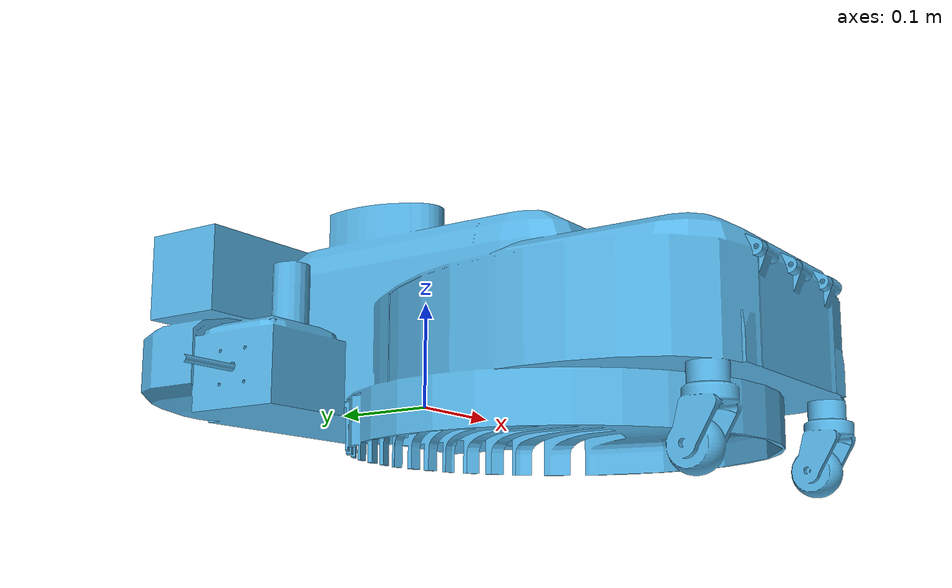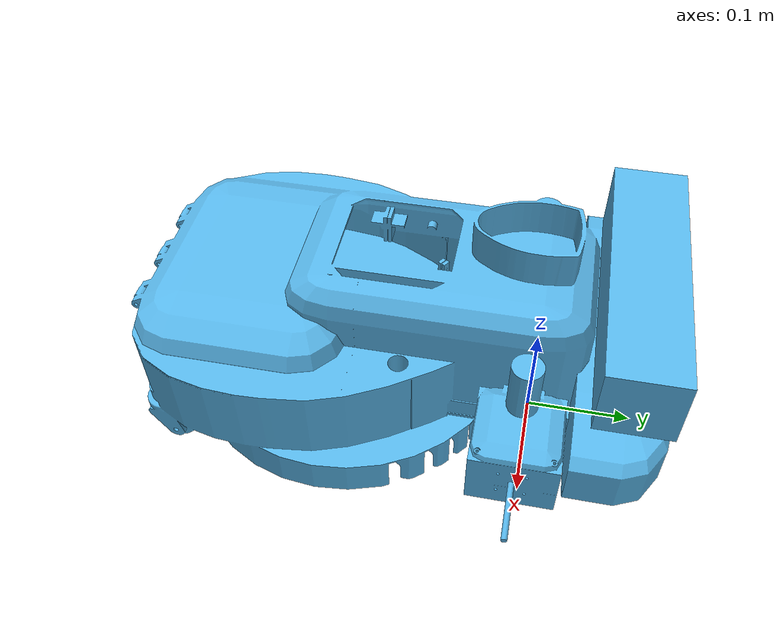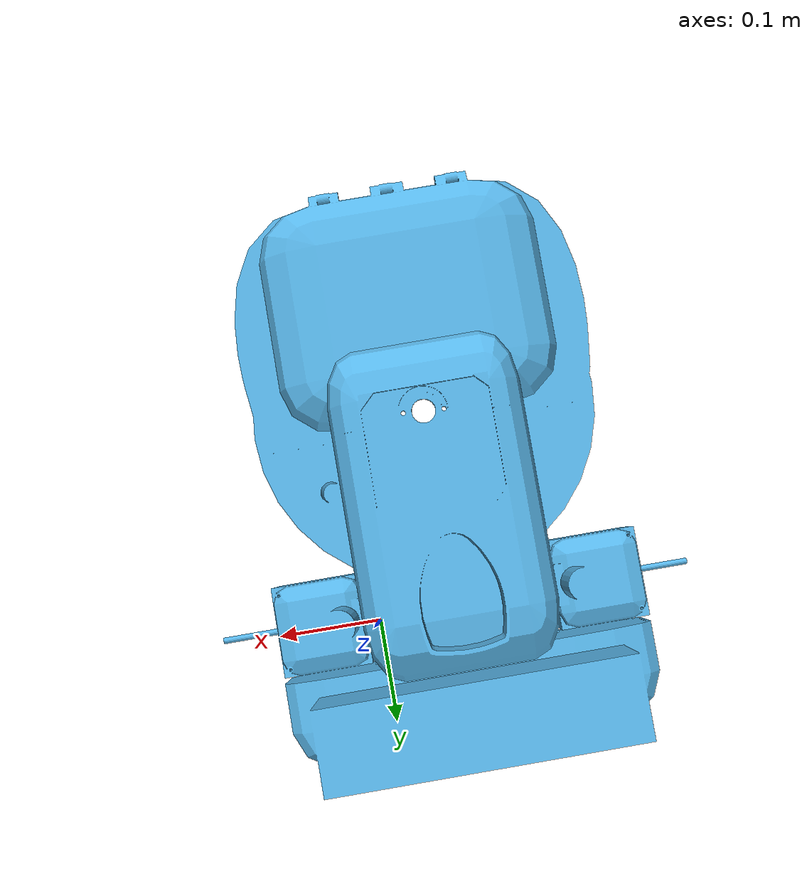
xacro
<?xml version="1.0"?>
<robot name="tondeuse" xmlns:xacro="http://www.ros.org/wiki/xacro">

<xacro:macro name="box_inertia" params="m x y z">
    <inertia  ixx="${m*(y*y+z*z)/12}" ixy = "0" ixz = "0"
        iyy="${m*(x*x+z*z)/12}" iyz = "0"
        izz="${m*(x*x+z*z)/12}" />
</xacro:macro>

<link name="base_footprint"/>

<joint name="footprint_base_link" type="fixed">
    <origin rpy="0 0 1.570796" xyz="-0.08 -0.005 0" />
    <child link="base_link"/>
    <parent link="base_footprint"/>
    <axis xyz="0 0 0"/>
</joint>

 <!-- base_link -->
 <link name="base_link">
   <!-- body -->
    <collision name="collision_chassis">
      <origin rpy="0 0 1.570796" xyz="-0.08 -0.005 -0.110"/>
      <geometry>
        <mesh filename="file://$(find tondeuse_description)/sdf/mesh/tondeuse.stl" scale="0.001 0.001 0.001"/>
      </geometry>
    </collision>
    <visual>
      <origin rpy="0 0 1.570796" xyz="-0.08 -0.005 -0.110"/>
      <geometry>
         <mesh filename="file://$(find tondeuse_description)/sdf/mesh/tondeuse.stl" scale="0.001 0.001 0.001"/>
      </geometry>
    </visual>
    <inertial>
      <origin xyz="-0.1 -0.005 0.110" rpy="0 0 0 "/>
      <mass value="1" />
      <inertia  ixx="0.01" ixy = "0" ixz = "0"
        iyy="0.01" iyz = "0"
        izz="0.01" />
      <!--xacro:box_inertia m="8.167" x="0.52" y="0.35" z="0.25" /-->
    </inertial>
  </link>

</robot>
